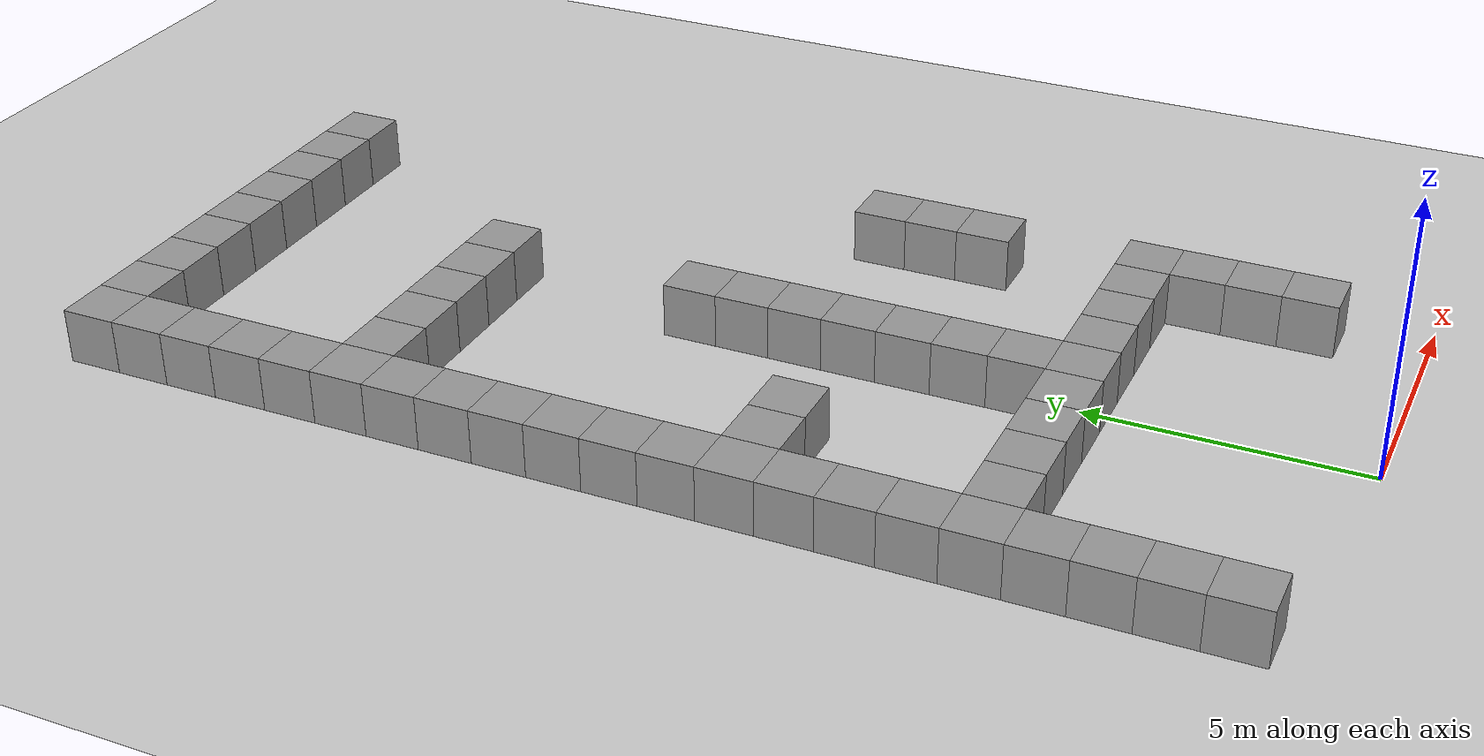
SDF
<sdf version="1.6">
 <world name="default">
  <model name="ground_plane">
   <static>1</static>
   <link name="link">
    <collision name="collision">
     <geometry><plane><normal>0 0 1</normal><size>100 100</size></plane></geometry>
     <surface><friction><ode><mu>100</mu><mu2>50</mu2></ode></friction></surface>
    </collision>
    <visual name="visual">
     <cast_shadows>0</cast_shadows>
     <geometry><plane><normal>0 0 1</normal><size>100 100</size></plane></geometry>
     <material>
      <script><uri>file://media/materials/scripts/gazebo.material</uri><name>Gazebo/Grey</name></script>
     </material>
    </visual>
    <velocity_decay><linear>0</linear><angular>0</angular></velocity_decay>
   </link>
  </model>
  <model name="unit_box_1">
   <pose>-5 5 0.5 0 0 0</pose>
   <static>1</static>
   <link name="link">
    <inertial>
     <mass>1</mass>
     <inertia><ixx>1</ixx><ixy>0</ixy><ixz>0</ixz><iyy>1</iyy><iyz>0</iyz><izz>1</izz></inertia>
    </inertial>
    <collision name="collision"><geometry><box><size>1 1 1</size></box></geometry></collision>
    <visual name="visual">
     <geometry><box><size>1 1 1</size></box></geometry>
     <material>
      <script><uri>file://media/materials/scripts/gazebo.material</uri><name>Gazebo/Grey</name></script>
     </material>
    </visual>
    <velocity_decay><linear>0</linear><angular>0</angular></velocity_decay>
   </link>
   <static>0</static>
  </model>
  <model name="unit_box_2">
   <pose>-4 5 0.5 0 0 0</pose>
   <static>1</static>
   <link name="link">
    <inertial>
     <mass>1</mass>
     <inertia><ixx>1</ixx><ixy>0</ixy><ixz>0</ixz><iyy>1</iyy><iyz>0</iyz><izz>1</izz></inertia>
    </inertial>
    <collision name="collision"><geometry><box><size>1 1 1</size></box></geometry></collision>
    <visual name="visual">
     <geometry><box><size>1 1 1</size></box></geometry>
     <material>
      <script><uri>file://media/materials/scripts/gazebo.material</uri><name>Gazebo/Grey</name></script>
     </material>
    </visual>
    <velocity_decay><linear>0</linear><angular>0</angular></velocity_decay>
   </link>
   <static>0</static>
  </model>
  <model name="unit_box_3">
   <pose>-3 5 0.5 0 0 0</pose>
   <static>1</static>
   <link name="link">
    <inertial>
     <mass>1</mass>
     <inertia><ixx>1</ixx><ixy>0</ixy><ixz>0</ixz><iyy>1</iyy><iyz>0</iyz><izz>1</izz></inertia>
    </inertial>
    <collision name="collision"><geometry><box><size>1 1 1</size></box></geometry></collision>
    <visual name="visual">
     <geometry><box><size>1 1 1</size></box></geometry>
     <material>
      <script><uri>file://media/materials/scripts/gazebo.material</uri><name>Gazebo/Grey</name></script>
     </material>
    </visual>
    <velocity_decay><linear>0</linear><angular>0</angular></velocity_decay>
   </link>
   <static>0</static>
  </model>
  <model name="unit_box_4">
   <pose>-2 5 0.5 0 0 0</pose>
   <static>1</static>
   <link name="link">
    <inertial>
     <mass>1</mass>
     <inertia><ixx>1</ixx><ixy>0</ixy><ixz>0</ixz><iyy>1</iyy><iyz>0</iyz><izz>1</izz></inertia>
    </inertial>
    <collision name="collision"><geometry><box><size>1 1 1</size></box></geometry></collision>
    <visual name="visual">
     <geometry><box><size>1 1 1</size></box></geometry>
     <material>
      <script><uri>file://media/materials/scripts/gazebo.material</uri><name>Gazebo/Grey</name></script>
     </material>
    </visual>
    <velocity_decay><linear>0</linear><angular>0</angular></velocity_decay>
   </link>
   <static>0</static>
  </model>
  <model name="unit_box_5">
   <pose>-1 5 0.5 0 0 0</pose>
   <static>1</static>
   <link name="link">
    <inertial>
     <mass>1</mass>
     <inertia><ixx>1</ixx><ixy>0</ixy><ixz>0</ixz><iyy>1</iyy><iyz>0</iyz><izz>1</izz></inertia>
    </inertial>
    <collision name="collision"><geometry><box><size>1 1 1</size></box></geometry></collision>
    <visual name="visual">
     <geometry><box><size>1 1 1</size></box></geometry>
     <material>
      <script><uri>file://media/materials/scripts/gazebo.material</uri><name>Gazebo/Grey</name></script>
     </material>
    </visual>
    <velocity_decay><linear>0</linear><angular>0</angular></velocity_decay>
   </link>
   <static>0</static>
  </model>
  <model name="unit_box_6">
   <pose>0 5 0.5 0 0 0</pose>
   <static>1</static>
   <link name="link">
    <inertial>
     <mass>1</mass>
     <inertia><ixx>1</ixx><ixy>0</ixy><ixz>0</ixz><iyy>1</iyy><iyz>0</iyz><izz>1</izz></inertia>
    </inertial>
    <collision name="collision"><geometry><box><size>1 1 1</size></box></geometry></collision>
    <visual name="visual">
     <geometry><box><size>1 1 1</size></box></geometry>
     <material>
      <script><uri>file://media/materials/scripts/gazebo.material</uri><name>Gazebo/Grey</name></script>
     </material>
    </visual>
    <velocity_decay><linear>0</linear><angular>0</angular></velocity_decay>
   </link>
   <static>0</static>
  </model>
  <model name="unit_box_7">
   <pose>1 5 0.5 0 0 0</pose>
   <static>1</static>
   <link name="link">
    <inertial>
     <mass>1</mass>
     <inertia><ixx>1</ixx><ixy>0</ixy><ixz>0</ixz><iyy>1</iyy><iyz>0</iyz><izz>1</izz></inertia>
    </inertial>
    <collision name="collision"><geometry><box><size>1 1 1</size></box></geometry></collision>
    <visual name="visual">
     <geometry><box><size>1 1 1</size></box></geometry>
     <material>
      <script><uri>file://media/materials/scripts/gazebo.material</uri><name>Gazebo/Grey</name></script>
     </material>
    </visual>
    <velocity_decay><linear>0</linear><angular>0</angular></velocity_decay>
   </link>
   <static>0</static>
  </model>
  <model name="unit_box_8">
   <pose>2 5 0.5 0 0 0</pose>
   <static>1</static>
   <link name="link">
    <inertial>
     <mass>1</mass>
     <inertia><ixx>1</ixx><ixy>0</ixy><ixz>0</ixz><iyy>1</iyy><iyz>0</iyz><izz>1</izz></inertia>
    </inertial>
    <collision name="collision"><geometry><box><size>1 1 1</size></box></geometry></collision>
    <visual name="visual">
     <geometry><box><size>1 1 1</size></box></geometry>
     <material>
      <script><uri>file://media/materials/scripts/gazebo.material</uri><name>Gazebo/Grey</name></script>
     </material>
    </visual>
    <velocity_decay><linear>0</linear><angular>0</angular></velocity_decay>
   </link>
   <static>0</static>
  </model>
  <model name="unit_box_9">
   <pose>3 5 0.5 0 0 0</pose>
   <static>1</static>
   <link name="link">
    <inertial>
     <mass>1</mass>
     <inertia><ixx>1</ixx><ixy>0</ixy><ixz>0</ixz><iyy>1</iyy><iyz>0</iyz><izz>1</izz></inertia>
    </inertial>
    <collision name="collision"><geometry><box><size>1 1 1</size></box></geometry></collision>
    <visual name="visual">
     <geometry><box><size>1 1 1</size></box></geometry>
     <material>
      <script><uri>file://media/materials/scripts/gazebo.material</uri><name>Gazebo/Grey</name></script>
     </material>
    </visual>
    <velocity_decay><linear>0</linear><angular>0</angular></velocity_decay>
   </link>
   <static>0</static>
  </model>
  <model name="unit_box_10">
   <pose>4 5 0.5 0 0 0</pose>
   <static>1</static>
   <link name="link">
    <inertial>
     <mass>1</mass>
     <inertia><ixx>1</ixx><ixy>0</ixy><ixz>0</ixz><iyy>1</iyy><iyz>0</iyz><izz>1</izz></inertia>
    </inertial>
    <collision name="collision"><geometry><box><size>1 1 1</size></box></geometry></collision>
    <visual name="visual">
     <geometry><box><size>1 1 1</size></box></geometry>
     <material>
      <script><uri>file://media/materials/scripts/gazebo.material</uri><name>Gazebo/Grey</name></script>
     </material>
    </visual>
    <velocity_decay><linear>0</linear><angular>0</angular></velocity_decay>
   </link>
   <static>0</static>
  </model>
  <model name="unit_box_11">
   <pose>4 4 0.5 0 0 0</pose>
   <static>1</static>
   <link name="link">
    <inertial>
     <mass>1</mass>
     <inertia><ixx>1</ixx><ixy>0</ixy><ixz>0</ixz><iyy>1</iyy><iyz>0</iyz><izz>1</izz></inertia>
    </inertial>
    <collision name="collision"><geometry><box><size>1 1 1</size></box></geometry></collision>
    <visual name="visual">
     <geometry><box><size>1 1 1</size></box></geometry>
     <material>
      <script><uri>file://media/materials/scripts/gazebo.material</uri><name>Gazebo/Grey</name></script>
     </material>
    </visual>
    <velocity_decay><linear>0</linear><angular>0</angular></velocity_decay>
   </link>
   <static>0</static>
  </model>
  <model name="unit_box_12">
   <pose>4 3 0.5 0 0 0</pose>
   <static>1</static>
   <link name="link">
    <inertial>
     <mass>1</mass>
     <inertia><ixx>1</ixx><ixy>0</ixy><ixz>0</ixz><iyy>1</iyy><iyz>0</iyz><izz>1</izz></inertia>
    </inertial>
    <collision name="collision"><geometry><box><size>1 1 1</size></box></geometry></collision>
    <visual name="visual">
     <geometry><box><size>1 1 1</size></box></geometry>
     <material>
      <script><uri>file://media/materials/scripts/gazebo.material</uri><name>Gazebo/Grey</name></script>
     </material>
    </visual>
    <velocity_decay><linear>0</linear><angular>0</angular></velocity_decay>
   </link>
   <static>0</static>
  </model>
  <model name="unit_box_13">
   <pose>4 2 0.5 0 0 0</pose>
   <static>1</static>
   <link name="link">
    <inertial>
     <mass>1</mass>
     <inertia><ixx>1</ixx><ixy>0</ixy><ixz>0</ixz><iyy>1</iyy><iyz>0</iyz><izz>1</izz></inertia>
    </inertial>
    <collision name="collision"><geometry><box><size>1 1 1</size></box></geometry></collision>
    <visual name="visual">
     <geometry><box><size>1 1 1</size></box></geometry>
     <material>
      <script><uri>file://media/materials/scripts/gazebo.material</uri><name>Gazebo/Grey</name></script>
     </material>
    </visual>
    <velocity_decay><linear>0</linear><angular>0</angular></velocity_decay>
   </link>
   <static>0</static>
  </model>
  <model name="unit_box_40">
   <pose>-5 4 0.5 0 0 0</pose>
   <static>1</static>
   <link name="link">
    <inertial>
     <mass>1</mass>
     <inertia><ixx>1</ixx><ixy>0</ixy><ixz>0</ixz><iyy>1</iyy><iyz>0</iyz><izz>1</izz></inertia>
    </inertial>
    <collision name="collision"><geometry><box><size>1 1 1</size></box></geometry></collision>
    <visual name="visual">
     <geometry><box><size>1 1 1</size></box></geometry>
     <material>
      <script><uri>file://media/materials/scripts/gazebo.material</uri><name>Gazebo/Grey</name></script>
     </material>
    </visual>
    <velocity_decay><linear>0</linear><angular>0</angular></velocity_decay>
   </link>
   <static>0</static>
  </model>
  <model name="unit_box_41">
   <pose>-5 3 0.5 0 0 0</pose>
   <static>1</static>
   <link name="link">
    <inertial>
     <mass>1</mass>
     <inertia><ixx>1</ixx><ixy>0</ixy><ixz>0</ixz><iyy>1</iyy><iyz>0</iyz><izz>1</izz></inertia>
    </inertial>
    <collision name="collision"><geometry><box><size>1 1 1</size></box></geometry></collision>
    <visual name="visual">
     <geometry><box><size>1 1 1</size></box></geometry>
     <material>
      <script><uri>file://media/materials/scripts/gazebo.material</uri><name>Gazebo/Grey</name></script>
     </material>
    </visual>
    <velocity_decay><linear>0</linear><angular>0</angular></velocity_decay>
   </link>
   <static>0</static>
  </model>
  <model name="unit_box_42">
   <pose>-5 2 0.5 0 0 0</pose>
   <static>1</static>
   <link name="link">
    <inertial>
     <mass>1</mass>
     <inertia><ixx>1</ixx><ixy>0</ixy><ixz>0</ixz><iyy>1</iyy><iyz>0</iyz><izz>1</izz></inertia>
    </inertial>
    <collision name="collision"><geometry><box><size>1 1 1</size></box></geometry></collision>
    <visual name="visual">
     <geometry><box><size>1 1 1</size></box></geometry>
     <material>
      <script><uri>file://media/materials/scripts/gazebo.material</uri><name>Gazebo/Grey</name></script>
     </material>
    </visual>
    <velocity_decay><linear>0</linear><angular>0</angular></velocity_decay>
   </link>
   <static>0</static>
  </model>
  <model name="unit_box_43">
   <pose>-5 1 0.5 0 0 0</pose>
   <static>1</static>
   <link name="link">
    <inertial>
     <mass>1</mass>
     <inertia><ixx>1</ixx><ixy>0</ixy><ixz>0</ixz><iyy>1</iyy><iyz>0</iyz><izz>1</izz></inertia>
    </inertial>
    <collision name="collision"><geometry><box><size>1 1 1</size></box></geometry></collision>
    <visual name="visual">
     <geometry><box><size>1 1 1</size></box></geometry>
     <material>
      <script><uri>file://media/materials/scripts/gazebo.material</uri><name>Gazebo/Grey</name></script>
     </material>
    </visual>
    <velocity_decay><linear>0</linear><angular>0</angular></velocity_decay>
   </link>
   <static>0</static>
  </model>
  <model name="unit_box_57">
   <pose>0 6 0.5 0 0 0</pose>
   <static>1</static>
   <link name="link">
    <inertial>
     <mass>1</mass>
     <inertia><ixx>1</ixx><ixy>0</ixy><ixz>0</ixz><iyy>1</iyy><iyz>0</iyz><izz>1</izz></inertia>
    </inertial>
    <collision name="collision"><geometry><box><size>1 1 1</size></box></geometry></collision>
    <visual name="visual">
     <geometry><box><size>1 1 1</size></box></geometry>
     <material>
      <script><uri>file://media/materials/scripts/gazebo.material</uri><name>Gazebo/Grey</name></script>
     </material>
    </visual>
    <velocity_decay><linear>0</linear><angular>0</angular></velocity_decay>
   </link>
   <static>0</static>
  </model>
  <model name="unit_box_58">
   <pose>0 7 0.5 0 0 0</pose>
   <static>1</static>
   <link name="link">
    <inertial>
     <mass>1</mass>
     <inertia><ixx>1</ixx><ixy>0</ixy><ixz>0</ixz><iyy>1</iyy><iyz>0</iyz><izz>1</izz></inertia>
    </inertial>
    <collision name="collision"><geometry><box><size>1 1 1</size></box></geometry></collision>
    <visual name="visual">
     <geometry><box><size>1 1 1</size></box></geometry>
     <material>
      <script><uri>file://media/materials/scripts/gazebo.material</uri><name>Gazebo/Grey</name></script>
     </material>
    </visual>
    <velocity_decay><linear>0</linear><angular>0</angular></velocity_decay>
   </link>
   <static>0</static>
  </model>
  <model name="unit_box_59">
   <pose>0 8 0.5 0 0 0</pose>
   <static>1</static>
   <link name="link">
    <inertial>
     <mass>1</mass>
     <inertia><ixx>1</ixx><ixy>0</ixy><ixz>0</ixz><iyy>1</iyy><iyz>0</iyz><izz>1</izz></inertia>
    </inertial>
    <collision name="collision"><geometry><box><size>1 1 1</size></box></geometry></collision>
    <visual name="visual">
     <geometry><box><size>1 1 1</size></box></geometry>
     <material>
      <script><uri>file://media/materials/scripts/gazebo.material</uri><name>Gazebo/Grey</name></script>
     </material>
    </visual>
    <velocity_decay><linear>0</linear><angular>0</angular></velocity_decay>
   </link>
   <static>0</static>
  </model>
  <model name="unit_box_60">
   <pose>0 9 0.5 0 0 0</pose>
   <static>1</static>
   <link name="link">
    <inertial>
     <mass>1</mass>
     <inertia><ixx>1</ixx><ixy>0</ixy><ixz>0</ixz><iyy>1</iyy><iyz>0</iyz><izz>1</izz></inertia>
    </inertial>
    <collision name="collision"><geometry><box><size>1 1 1</size></box></geometry></collision>
    <visual name="visual">
     <geometry><box><size>1 1 1</size></box></geometry>
     <material>
      <script><uri>file://media/materials/scripts/gazebo.material</uri><name>Gazebo/Grey</name></script>
     </material>
    </visual>
    <velocity_decay><linear>0</linear><angular>0</angular></velocity_decay>
   </link>
   <static>0</static>
  </model>
  <model name="unit_box_61">
   <pose>-5 6 0.5 0 0 0</pose>
   <static>1</static>
   <link name="link">
    <inertial>
     <mass>1</mass>
     <inertia><ixx>1</ixx><ixy>0</ixy><ixz>0</ixz><iyy>1</iyy><iyz>0</iyz><izz>1</izz></inertia>
    </inertial>
    <collision name="collision"><geometry><box><size>1 1 1</size></box></geometry></collision>
    <visual name="visual">
     <geometry><box><size>1 1 1</size></box></geometry>
     <material>
      <script><uri>file://media/materials/scripts/gazebo.material</uri><name>Gazebo/Grey</name></script>
     </material>
    </visual>
    <velocity_decay><linear>0</linear><angular>0</angular></velocity_decay>
   </link>
   <static>0</static>
  </model>
  <model name="unit_box_62">
   <pose>0 10 0.5 0 0 0</pose>
   <static>1</static>
   <link name="link">
    <inertial>
     <mass>1</mass>
     <inertia><ixx>1</ixx><ixy>0</ixy><ixz>0</ixz><iyy>1</iyy><iyz>0</iyz><izz>1</izz></inertia>
    </inertial>
    <collision name="collision"><geometry><box><size>1 1 1</size></box></geometry></collision>
    <visual name="visual">
     <geometry><box><size>1 1 1</size></box></geometry>
     <material>
      <script><uri>file://media/materials/scripts/gazebo.material</uri><name>Gazebo/Grey</name></script>
     </material>
    </visual>
    <velocity_decay><linear>0</linear><angular>0</angular></velocity_decay>
   </link>
   <static>0</static>
  </model>
  <model name="unit_box_63">
   <pose>0 11 0.5 0 0 0</pose>
   <static>1</static>
   <link name="link">
    <inertial>
     <mass>1</mass>
     <inertia><ixx>1</ixx><ixy>0</ixy><ixz>0</ixz><iyy>1</iyy><iyz>0</iyz><izz>1</izz></inertia>
    </inertial>
    <collision name="collision"><geometry><box><size>1 1 1</size></box></geometry></collision>
    <visual name="visual">
     <geometry><box><size>1 1 1</size></box></geometry>
     <material>
      <script><uri>file://media/materials/scripts/gazebo.material</uri><name>Gazebo/Grey</name></script>
     </material>
    </visual>
    <velocity_decay><linear>0</linear><angular>0</angular></velocity_decay>
   </link>
   <static>0</static>
  </model>
  <model name="unit_box_64">
   <pose>0 12 0.5 0 0 0</pose>
   <static>1</static>
   <link name="link">
    <inertial>
     <mass>1</mass>
     <inertia><ixx>1</ixx><ixy>0</ixy><ixz>0</ixz><iyy>1</iyy><iyz>0</iyz><izz>1</izz></inertia>
    </inertial>
    <collision name="collision"><geometry><box><size>1 1 1</size></box></geometry></collision>
    <visual name="visual">
     <geometry><box><size>1 1 1</size></box></geometry>
     <material>
      <script><uri>file://media/materials/scripts/gazebo.material</uri><name>Gazebo/Grey</name></script>
     </material>
    </visual>
    <velocity_decay><linear>0</linear><angular>0</angular></velocity_decay>
   </link>
   <static>0</static>
  </model>
  <model name="unit_box_67">
   <pose>-5 7 0.5 0 0 0</pose>
   <static>1</static>
   <link name="link">
    <inertial>
     <mass>1</mass>
     <inertia><ixx>1</ixx><ixy>0</ixy><ixz>0</ixz><iyy>1</iyy><iyz>0</iyz><izz>1</izz></inertia>
    </inertial>
    <collision name="collision"><geometry><box><size>1 1 1</size></box></geometry></collision>
    <visual name="visual">
     <geometry><box><size>1 1 1</size></box></geometry>
     <material>
      <script><uri>file://media/materials/scripts/gazebo.material</uri><name>Gazebo/Grey</name></script>
     </material>
    </visual>
    <velocity_decay><linear>0</linear><angular>0</angular></velocity_decay>
   </link>
   <static>0</static>
  </model>
  <model name="unit_box_68">
   <pose>-5 8 0.5 0 0 0</pose>
   <static>1</static>
   <link name="link">
    <inertial>
     <mass>1</mass>
     <inertia><ixx>1</ixx><ixy>0</ixy><ixz>0</ixz><iyy>1</iyy><iyz>0</iyz><izz>1</izz></inertia>
    </inertial>
    <collision name="collision"><geometry><box><size>1 1 1</size></box></geometry></collision>
    <visual name="visual">
     <geometry><box><size>1 1 1</size></box></geometry>
     <material>
      <script><uri>file://media/materials/scripts/gazebo.material</uri><name>Gazebo/Grey</name></script>
     </material>
    </visual>
    <velocity_decay><linear>0</linear><angular>0</angular></velocity_decay>
   </link>
   <static>0</static>
  </model>
  <model name="unit_box_69">
   <pose>-5 9 0.5 0 0 0</pose>
   <static>1</static>
   <link name="link">
    <inertial>
     <mass>1</mass>
     <inertia><ixx>1</ixx><ixy>0</ixy><ixz>0</ixz><iyy>1</iyy><iyz>0</iyz><izz>1</izz></inertia>
    </inertial>
    <collision name="collision"><geometry><box><size>1 1 1</size></box></geometry></collision>
    <visual name="visual">
     <geometry><box><size>1 1 1</size></box></geometry>
     <material>
      <script><uri>file://media/materials/scripts/gazebo.material</uri><name>Gazebo/Grey</name></script>
     </material>
    </visual>
    <velocity_decay><linear>0</linear><angular>0</angular></velocity_decay>
   </link>
   <static>0</static>
  </model>
  <model name="unit_box_70">
   <pose>-4 9 0.5 0 0 0</pose>
   <static>1</static>
   <link name="link">
    <inertial>
     <mass>1</mass>
     <inertia><ixx>1</ixx><ixy>0</ixy><ixz>0</ixz><iyy>1</iyy><iyz>0</iyz><izz>1</izz></inertia>
    </inertial>
    <collision name="collision"><geometry><box><size>1 1 1</size></box></geometry></collision>
    <visual name="visual">
     <geometry><box><size>1 1 1</size></box></geometry>
     <material>
      <script><uri>file://media/materials/scripts/gazebo.material</uri><name>Gazebo/Grey</name></script>
     </material>
    </visual>
    <velocity_decay><linear>0</linear><angular>0</angular></velocity_decay>
   </link>
   <static>0</static>
  </model>
  <model name="unit_box_71">
   <pose>-3 9 0.5 0 0 0</pose>
   <static>1</static>
   <link name="link">
    <inertial>
     <mass>1</mass>
     <inertia><ixx>1</ixx><ixy>0</ixy><ixz>0</ixz><iyy>1</iyy><iyz>0</iyz><izz>1</izz></inertia>
    </inertial>
    <collision name="collision"><geometry><box><size>1 1 1</size></box></geometry></collision>
    <visual name="visual">
     <geometry><box><size>1 1 1</size></box></geometry>
     <material>
      <script><uri>file://media/materials/scripts/gazebo.material</uri><name>Gazebo/Grey</name></script>
     </material>
    </visual>
    <velocity_decay><linear>0</linear><angular>0</angular></velocity_decay>
   </link>
   <static>0</static>
  </model>
  <model name="unit_box_72">
   <pose>-5 10 0.5 0 0 0</pose>
   <static>1</static>
   <link name="link">
    <inertial>
     <mass>1</mass>
     <inertia><ixx>1</ixx><ixy>0</ixy><ixz>0</ixz><iyy>1</iyy><iyz>0</iyz><izz>1</izz></inertia>
    </inertial>
    <collision name="collision"><geometry><box><size>1 1 1</size></box></geometry></collision>
    <visual name="visual">
     <geometry><box><size>1 1 1</size></box></geometry>
     <material>
      <script><uri>file://media/materials/scripts/gazebo.material</uri><name>Gazebo/Grey</name></script>
     </material>
    </visual>
    <velocity_decay><linear>0</linear><angular>0</angular></velocity_decay>
   </link>
   <static>0</static>
  </model>
  <model name="unit_box_73">
   <pose>-5 11 0.5 0 0 0</pose>
   <static>1</static>
   <link name="link">
    <inertial>
     <mass>1</mass>
     <inertia><ixx>1</ixx><ixy>0</ixy><ixz>0</ixz><iyy>1</iyy><iyz>0</iyz><izz>1</izz></inertia>
    </inertial>
    <collision name="collision"><geometry><box><size>1 1 1</size></box></geometry></collision>
    <visual name="visual">
     <geometry><box><size>1 1 1</size></box></geometry>
     <material>
      <script><uri>file://media/materials/scripts/gazebo.material</uri><name>Gazebo/Grey</name></script>
     </material>
    </visual>
    <velocity_decay><linear>0</linear><angular>0</angular></velocity_decay>
   </link>
   <static>0</static>
  </model>
  <model name="unit_box_74">
   <pose>-5 12 0.5 0 0 0</pose>
   <static>1</static>
   <link name="link">
    <inertial>
     <mass>1</mass>
     <inertia><ixx>1</ixx><ixy>0</ixy><ixz>0</ixz><iyy>1</iyy><iyz>0</iyz><izz>1</izz></inertia>
    </inertial>
    <collision name="collision"><geometry><box><size>1 1 1</size></box></geometry></collision>
    <visual name="visual">
     <geometry><box><size>1 1 1</size></box></geometry>
     <material>
      <script><uri>file://media/materials/scripts/gazebo.material</uri><name>Gazebo/Grey</name></script>
     </material>
    </visual>
    <velocity_decay><linear>0</linear><angular>0</angular></velocity_decay>
   </link>
   <static>0</static>
  </model>
  <model name="unit_box_75">
   <pose>-5 13 0.5 0 0 0</pose>
   <static>1</static>
   <link name="link">
    <inertial>
     <mass>1</mass>
     <inertia><ixx>1</ixx><ixy>0</ixy><ixz>0</ixz><iyy>1</iyy><iyz>0</iyz><izz>1</izz></inertia>
    </inertial>
    <collision name="collision"><geometry><box><size>1 1 1</size></box></geometry></collision>
    <visual name="visual">
     <geometry><box><size>1 1 1</size></box></geometry>
     <material>
      <script><uri>file://media/materials/scripts/gazebo.material</uri><name>Gazebo/Grey</name></script>
     </material>
    </visual>
    <velocity_decay><linear>0</linear><angular>0</angular></velocity_decay>
   </link>
   <static>0</static>
  </model>
  <model name="unit_box_76">
   <pose>-5 14 0.5 0 0 0</pose>
   <static>1</static>
   <link name="link">
    <inertial>
     <mass>1</mass>
     <inertia><ixx>1</ixx><ixy>0</ixy><ixz>0</ixz><iyy>1</iyy><iyz>0</iyz><izz>1</izz></inertia>
    </inertial>
    <collision name="collision"><geometry><box><size>1 1 1</size></box></geometry></collision>
    <visual name="visual">
     <geometry><box><size>1 1 1</size></box></geometry>
     <material>
      <script><uri>file://media/materials/scripts/gazebo.material</uri><name>Gazebo/Grey</name></script>
     </material>
    </visual>
    <velocity_decay><linear>0</linear><angular>0</angular></velocity_decay>
   </link>
   <static>0</static>
  </model>
  <model name="unit_box_77">
   <pose>-5 15 0.5 0 0 0</pose>
   <static>1</static>
   <link name="link">
    <inertial>
     <mass>1</mass>
     <inertia><ixx>1</ixx><ixy>0</ixy><ixz>0</ixz><iyy>1</iyy><iyz>0</iyz><izz>1</izz></inertia>
    </inertial>
    <collision name="collision"><geometry><box><size>1 1 1</size></box></geometry></collision>
    <visual name="visual">
     <geometry><box><size>1 1 1</size></box></geometry>
     <material>
      <script><uri>file://media/materials/scripts/gazebo.material</uri><name>Gazebo/Grey</name></script>
     </material>
    </visual>
    <velocity_decay><linear>0</linear><angular>0</angular></velocity_decay>
   </link>
   <static>0</static>
  </model>
  <model name="unit_box_78">
   <pose>-5 16 0.5 0 0 0</pose>
   <static>1</static>
   <link name="link">
    <inertial>
     <mass>1</mass>
     <inertia><ixx>1</ixx><ixy>0</ixy><ixz>0</ixz><iyy>1</iyy><iyz>0</iyz><izz>1</izz></inertia>
    </inertial>
    <collision name="collision"><geometry><box><size>1 1 1</size></box></geometry></collision>
    <visual name="visual">
     <geometry><box><size>1 1 1</size></box></geometry>
     <material>
      <script><uri>file://media/materials/scripts/gazebo.material</uri><name>Gazebo/Grey</name></script>
     </material>
    </visual>
    <velocity_decay><linear>0</linear><angular>0</angular></velocity_decay>
   </link>
   <static>0</static>
  </model>
  <model name="unit_box_79">
   <pose>-5 17 0.5 0 0 0</pose>
   <static>1</static>
   <link name="link">
    <inertial>
     <mass>1</mass>
     <inertia><ixx>1</ixx><ixy>0</ixy><ixz>0</ixz><iyy>1</iyy><iyz>0</iyz><izz>1</izz></inertia>
    </inertial>
    <collision name="collision"><geometry><box><size>1 1 1</size></box></geometry></collision>
    <visual name="visual">
     <geometry><box><size>1 1 1</size></box></geometry>
     <material>
      <script><uri>file://media/materials/scripts/gazebo.material</uri><name>Gazebo/Grey</name></script>
     </material>
    </visual>
    <velocity_decay><linear>0</linear><angular>0</angular></velocity_decay>
   </link>
   <static>0</static>
  </model>
  <model name="unit_box_80">
   <pose>-5 18 0.5 0 0 0</pose>
   <static>1</static>
   <link name="link">
    <inertial>
     <mass>1</mass>
     <inertia><ixx>1</ixx><ixy>0</ixy><ixz>0</ixz><iyy>1</iyy><iyz>0</iyz><izz>1</izz></inertia>
    </inertial>
    <collision name="collision"><geometry><box><size>1 1 1</size></box></geometry></collision>
    <visual name="visual">
     <geometry><box><size>1 1 1</size></box></geometry>
     <material>
      <script><uri>file://media/materials/scripts/gazebo.material</uri><name>Gazebo/Grey</name></script>
     </material>
    </visual>
    <velocity_decay><linear>0</linear><angular>0</angular></velocity_decay>
   </link>
   <static>0</static>
  </model>
  <model name="unit_box_81">
   <pose>-4 16 0.5 0 0 0</pose>
   <static>1</static>
   <link name="link">
    <inertial>
     <mass>1</mass>
     <inertia><ixx>1</ixx><ixy>0</ixy><ixz>0</ixz><iyy>1</iyy><iyz>0</iyz><izz>1</izz></inertia>
    </inertial>
    <collision name="collision"><geometry><box><size>1 1 1</size></box></geometry></collision>
    <visual name="visual">
     <geometry><box><size>1 1 1</size></box></geometry>
     <material>
      <script><uri>file://media/materials/scripts/gazebo.material</uri><name>Gazebo/Grey</name></script>
     </material>
    </visual>
    <velocity_decay><linear>0</linear><angular>0</angular></velocity_decay>
   </link>
   <static>0</static>
  </model>
  <model name="unit_box_82">
   <pose>-3 16 0.5 0 0 0</pose>
   <static>1</static>
   <link name="link">
    <inertial>
     <mass>1</mass>
     <inertia><ixx>1</ixx><ixy>0</ixy><ixz>0</ixz><iyy>1</iyy><iyz>0</iyz><izz>1</izz></inertia>
    </inertial>
    <collision name="collision"><geometry><box><size>1 1 1</size></box></geometry></collision>
    <visual name="visual">
     <geometry><box><size>1 1 1</size></box></geometry>
     <material>
      <script><uri>file://media/materials/scripts/gazebo.material</uri><name>Gazebo/Grey</name></script>
     </material>
    </visual>
    <velocity_decay><linear>0</linear><angular>0</angular></velocity_decay>
   </link>
   <static>0</static>
  </model>
  <model name="unit_box_83">
   <pose>-2 16 0.5 0 0 0</pose>
   <static>1</static>
   <link name="link">
    <inertial>
     <mass>1</mass>
     <inertia><ixx>1</ixx><ixy>0</ixy><ixz>0</ixz><iyy>1</iyy><iyz>0</iyz><izz>1</izz></inertia>
    </inertial>
    <collision name="collision"><geometry><box><size>1 1 1</size></box></geometry></collision>
    <visual name="visual">
     <geometry><box><size>1 1 1</size></box></geometry>
     <material>
      <script><uri>file://media/materials/scripts/gazebo.material</uri><name>Gazebo/Grey</name></script>
     </material>
    </visual>
    <velocity_decay><linear>0</linear><angular>0</angular></velocity_decay>
   </link>
   <static>0</static>
  </model>
  <model name="unit_box_84">
   <pose>-1 16 0.5 0 0 0</pose>
   <static>1</static>
   <link name="link">
    <inertial>
     <mass>1</mass>
     <inertia><ixx>1</ixx><ixy>0</ixy><ixz>0</ixz><iyy>1</iyy><iyz>0</iyz><izz>1</izz></inertia>
    </inertial>
    <collision name="collision"><geometry><box><size>1 1 1</size></box></geometry></collision>
    <visual name="visual">
     <geometry><box><size>1 1 1</size></box></geometry>
     <material>
      <script><uri>file://media/materials/scripts/gazebo.material</uri><name>Gazebo/Grey</name></script>
     </material>
    </visual>
    <velocity_decay><linear>0</linear><angular>0</angular></velocity_decay>
   </link>
   <static>0</static>
  </model>
  <model name="unit_box_85">
   <pose>0 16 0.5 0 0 0</pose>
   <static>1</static>
   <link name="link">
    <inertial>
     <mass>1</mass>
     <inertia><ixx>1</ixx><ixy>0</ixy><ixz>0</ixz><iyy>1</iyy><iyz>0</iyz><izz>1</izz></inertia>
    </inertial>
    <collision name="collision"><geometry><box><size>1 1 1</size></box></geometry></collision>
    <visual name="visual">
     <geometry><box><size>1 1 1</size></box></geometry>
     <material>
      <script><uri>file://media/materials/scripts/gazebo.material</uri><name>Gazebo/Grey</name></script>
     </material>
    </visual>
    <velocity_decay><linear>0</linear><angular>0</angular></velocity_decay>
   </link>
   <static>0</static>
  </model>
  <model name="unit_box_90">
   <pose>4 8 0.5 0 0 0</pose>
   <static>1</static>
   <link name="link">
    <inertial>
     <mass>1</mass>
     <inertia><ixx>1</ixx><ixy>0</ixy><ixz>0</ixz><iyy>1</iyy><iyz>0</iyz><izz>1</izz></inertia>
    </inertial>
    <collision name="collision"><geometry><box><size>1 1 1</size></box></geometry></collision>
    <visual name="visual">
     <geometry><box><size>1 1 1</size></box></geometry>
     <material>
      <script><uri>file://media/materials/scripts/gazebo.material</uri><name>Gazebo/Grey</name></script>
     </material>
    </visual>
    <velocity_decay><linear>0</linear><angular>0</angular></velocity_decay>
   </link>
   <static>0</static>
  </model>
  <model name="unit_box_91">
   <pose>4 9 0.5 0 0 0</pose>
   <static>1</static>
   <link name="link">
    <inertial>
     <mass>1</mass>
     <inertia><ixx>1</ixx><ixy>0</ixy><ixz>0</ixz><iyy>1</iyy><iyz>0</iyz><izz>1</izz></inertia>
    </inertial>
    <collision name="collision"><geometry><box><size>1 1 1</size></box></geometry></collision>
    <visual name="visual">
     <geometry><box><size>1 1 1</size></box></geometry>
     <material>
      <script><uri>file://media/materials/scripts/gazebo.material</uri><name>Gazebo/Grey</name></script>
     </material>
    </visual>
    <velocity_decay><linear>0</linear><angular>0</angular></velocity_decay>
   </link>
   <static>0</static>
  </model>
  <model name="unit_box_92">
   <pose>4 10 0.5 0 0 0</pose>
   <static>1</static>
   <link name="link">
    <inertial>
     <mass>1</mass>
     <inertia><ixx>1</ixx><ixy>0</ixy><ixz>0</ixz><iyy>1</iyy><iyz>0</iyz><izz>1</izz></inertia>
    </inertial>
    <collision name="collision"><geometry><box><size>1 1 1</size></box></geometry></collision>
    <visual name="visual">
     <geometry><box><size>1 1 1</size></box></geometry>
     <material>
      <script><uri>file://media/materials/scripts/gazebo.material</uri><name>Gazebo/Grey</name></script>
     </material>
    </visual>
    <velocity_decay><linear>0</linear><angular>0</angular></velocity_decay>
   </link>
   <static>0</static>
  </model>
  <model name="unit_box_96">
   <pose>-5 19 0.5 0 0 0</pose>
   <static>1</static>
   <link name="link">
    <inertial>
     <mass>1</mass>
     <inertia><ixx>1</ixx><ixy>0</ixy><ixz>0</ixz><iyy>1</iyy><iyz>0</iyz><izz>1</izz></inertia>
    </inertial>
    <collision name="collision"><geometry><box><size>1 1 1</size></box></geometry></collision>
    <visual name="visual">
     <geometry><box><size>1 1 1</size></box></geometry>
     <material>
      <script><uri>file://media/materials/scripts/gazebo.material</uri><name>Gazebo/Grey</name></script>
     </material>
    </visual>
    <velocity_decay><linear>0</linear><angular>0</angular></velocity_decay>
   </link>
   <static>0</static>
  </model>
  <model name="unit_box_97">
   <pose>-5 20 0.5 0 0 0</pose>
   <static>1</static>
   <link name="link">
    <inertial>
     <mass>1</mass>
     <inertia><ixx>1</ixx><ixy>0</ixy><ixz>0</ixz><iyy>1</iyy><iyz>0</iyz><izz>1</izz></inertia>
    </inertial>
    <collision name="collision"><geometry><box><size>1 1 1</size></box></geometry></collision>
    <visual name="visual">
     <geometry><box><size>1 1 1</size></box></geometry>
     <material>
      <script><uri>file://media/materials/scripts/gazebo.material</uri><name>Gazebo/Grey</name></script>
     </material>
    </visual>
    <velocity_decay><linear>0</linear><angular>0</angular></velocity_decay>
   </link>
   <static>0</static>
  </model>
  <model name="unit_box_98">
   <pose>-5 21 0.5 0 0 0</pose>
   <static>1</static>
   <link name="link">
    <inertial>
     <mass>1</mass>
     <inertia><ixx>1</ixx><ixy>0</ixy><ixz>0</ixz><iyy>1</iyy><iyz>0</iyz><izz>1</izz></inertia>
    </inertial>
    <collision name="collision"><geometry><box><size>1 1 1</size></box></geometry></collision>
    <visual name="visual">
     <geometry><box><size>1 1 1</size></box></geometry>
     <material>
      <script><uri>file://media/materials/scripts/gazebo.material</uri><name>Gazebo/Grey</name></script>
     </material>
    </visual>
    <velocity_decay><linear>0</linear><angular>0</angular></velocity_decay>
   </link>
   <static>0</static>
  </model>
  <model name="unit_box_99">
   <pose>-4 21 0.5 0 0 0</pose>
   <static>1</static>
   <link name="link">
    <inertial>
     <mass>1</mass>
     <inertia><ixx>1</ixx><ixy>0</ixy><ixz>0</ixz><iyy>1</iyy><iyz>0</iyz><izz>1</izz></inertia>
    </inertial>
    <collision name="collision"><geometry><box><size>1 1 1</size></box></geometry></collision>
    <visual name="visual">
     <geometry><box><size>1 1 1</size></box></geometry>
     <material>
      <script><uri>file://media/materials/scripts/gazebo.material</uri><name>Gazebo/Grey</name></script>
     </material>
    </visual>
    <velocity_decay><linear>0</linear><angular>0</angular></velocity_decay>
   </link>
   <static>0</static>
  </model>
  <model name="unit_box_100">
   <pose>-3 21 0.5 0 0 0</pose>
   <static>1</static>
   <link name="link">
    <inertial>
     <mass>1</mass>
     <inertia><ixx>1</ixx><ixy>0</ixy><ixz>0</ixz><iyy>1</iyy><iyz>0</iyz><izz>1</izz></inertia>
    </inertial>
    <collision name="collision"><geometry><box><size>1 1 1</size></box></geometry></collision>
    <visual name="visual">
     <geometry><box><size>1 1 1</size></box></geometry>
     <material>
      <script><uri>file://media/materials/scripts/gazebo.material</uri><name>Gazebo/Grey</name></script>
     </material>
    </visual>
    <velocity_decay><linear>0</linear><angular>0</angular></velocity_decay>
   </link>
   <static>0</static>
  </model>
  <model name="unit_box_101">
   <pose>-2 21 0.5 0 0 0</pose>
   <static>1</static>
   <link name="link">
    <inertial>
     <mass>1</mass>
     <inertia><ixx>1</ixx><ixy>0</ixy><ixz>0</ixz><iyy>1</iyy><iyz>0</iyz><izz>1</izz></inertia>
    </inertial>
    <collision name="collision"><geometry><box><size>1 1 1</size></box></geometry></collision>
    <visual name="visual">
     <geometry><box><size>1 1 1</size></box></geometry>
     <material>
      <script><uri>file://media/materials/scripts/gazebo.material</uri><name>Gazebo/Grey</name></script>
     </material>
    </visual>
    <velocity_decay><linear>0</linear><angular>0</angular></velocity_decay>
   </link>
   <static>0</static>
  </model>
  <model name="unit_box_102">
   <pose>-1 21 0.5 0 0 0</pose>
   <static>1</static>
   <link name="link">
    <inertial>
     <mass>1</mass>
     <inertia><ixx>1</ixx><ixy>0</ixy><ixz>0</ixz><iyy>1</iyy><iyz>0</iyz><izz>1</izz></inertia>
    </inertial>
    <collision name="collision"><geometry><box><size>1 1 1</size></box></geometry></collision>
    <visual name="visual">
     <geometry><box><size>1 1 1</size></box></geometry>
     <material>
      <script><uri>file://media/materials/scripts/gazebo.material</uri><name>Gazebo/Grey</name></script>
     </material>
    </visual>
    <velocity_decay><linear>0</linear><angular>0</angular></velocity_decay>
   </link>
   <static>0</static>
  </model>
  <model name="unit_box_103">
   <pose>0 21 0.5 0 0 0</pose>
   <static>1</static>
   <link name="link">
    <inertial>
     <mass>1</mass>
     <inertia><ixx>1</ixx><ixy>0</ixy><ixz>0</ixz><iyy>1</iyy><iyz>0</iyz><izz>1</izz></inertia>
    </inertial>
    <collision name="collision"><geometry><box><size>1 1 1</size></box></geometry></collision>
    <visual name="visual">
     <geometry><box><size>1 1 1</size></box></geometry>
     <material>
      <script><uri>file://media/materials/scripts/gazebo.material</uri><name>Gazebo/Grey</name></script>
     </material>
    </visual>
    <velocity_decay><linear>0</linear><angular>0</angular></velocity_decay>
   </link>
   <static>0</static>
  </model>
  <model name="unit_box_104">
   <pose>1 21 0.5 0 0 0</pose>
   <static>1</static>
   <link name="link">
    <inertial>
     <mass>1</mass>
     <inertia><ixx>1</ixx><ixy>0</ixy><ixz>0</ixz><iyy>1</iyy><iyz>0</iyz><izz>1</izz></inertia>
    </inertial>
    <collision name="collision"><geometry><box><size>1 1 1</size></box></geometry></collision>
    <visual name="visual">
     <geometry><box><size>1 1 1</size></box></geometry>
     <material>
      <script><uri>file://media/materials/scripts/gazebo.material</uri><name>Gazebo/Grey</name></script>
     </material>
    </visual>
    <velocity_decay><linear>0</linear><angular>0</angular></velocity_decay>
   </link>
   <static>0</static>
  </model>
  <model name="unit_box_105">
   <pose>2 21 0.5 0 0 0</pose>
   <static>1</static>
   <link name="link">
    <inertial>
     <mass>1</mass>
     <inertia><ixx>1</ixx><ixy>0</ixy><ixz>0</ixz><iyy>1</iyy><iyz>0</iyz><izz>1</izz></inertia>
    </inertial>
    <collision name="collision"><geometry><box><size>1 1 1</size></box></geometry></collision>
    <visual name="visual">
     <geometry><box><size>1 1 1</size></box></geometry>
     <material>
      <script><uri>file://media/materials/scripts/gazebo.material</uri><name>Gazebo/Grey</name></script>
     </material>
    </visual>
    <velocity_decay><linear>0</linear><angular>0</angular></velocity_decay>
   </link>
   <static>0</static>
  </model>
  <model name="unit_box_106">
   <pose>3 21 0.5 0 0 0</pose>
   <static>1</static>
   <link name="link">
    <inertial>
     <mass>1</mass>
     <inertia><ixx>1</ixx><ixy>0</ixy><ixz>0</ixz><iyy>1</iyy><iyz>0</iyz><izz>1</izz></inertia>
    </inertial>
    <collision name="collision"><geometry><box><size>1 1 1</size></box></geometry></collision>
    <visual name="visual">
     <geometry><box><size>1 1 1</size></box></geometry>
     <material>
      <script><uri>file://media/materials/scripts/gazebo.material</uri><name>Gazebo/Grey</name></script>
     </material>
    </visual>
    <velocity_decay><linear>0</linear><angular>0</angular></velocity_decay>
   </link>
   <static>0</static>
  </model>
 </world>
</sdf>
